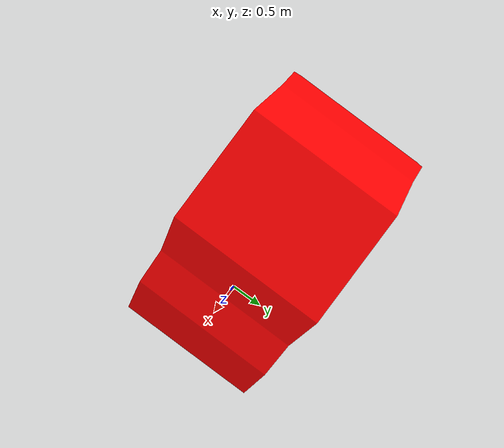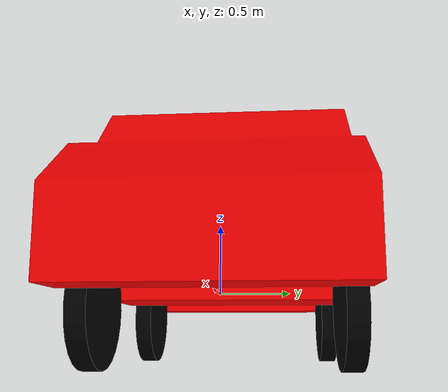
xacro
<?xml version="1.0"?>
<robot xmlns:xacro="http://www.ros.org/wiki/xacro" name="target_model" >
  <xacro:property name="wheelbase" value="2"/>
  <xacro:property name="gauge" value="2"/>
  <xacro:property name="wheel_r" value="0.45"/>
  <xacro:property name="wheel_h" value="0.15"/>
  <xacro:property name="real_wheelbase" value="1"/>
  <xacro:property name="real_gauge" value="1"/>
  <xacro:property name="real_wheel_r" value="0.4"/>
  <xacro:property name="real_wheel_h" value="0.05"/>
  <xacro:property name="body_mass" value="5"/>
  <xacro:property name="wheel_mass" value="0.2"/>

  <link name="base_link" />

  <joint name="zero_joint" type="fixed">
    <parent link="base_link"/>
    <child link="body_link"/>
     <origin xyz="0 0 0" rpy="0 0 0"/>
  </joint>
  <link name="body_link">
    <visual>
      <geometry>
        <!--mesh filename="file://$(find target_vehicle_description)/meshes/target_vehicle.dae"/-->
        <mesh filename="file://$(find target_vehicle_description)/meshes/follow_platform.dae"/>
      </geometry>
      <!--origin xyz="-1.1 0 -0.3" rpy="0 0 -1.57"/-->
      <material name="red">
	 <color rgba="1 0 0 1"/>
       </material>
    </visual>
    <collision>
      <geometry>
        <box size="4 1.1 1" />
      </geometry>
      <origin xyz="-1 0 0.7" rpy="0 0 0"/>
    </collision>
    <inertial>
      <mass value="${body_mass}"/>
      <inertia ixx="0.01" ixy="0.0" ixz="0.0" iyy="0.01" iyz="0.0" izz="0.01"/>
      <origin xyz="-0.4 0 -0.5" />
    </inertial>
  </link>

  <gazebo reference="body_link">
    <mu1>1</mu1>
    <mu2>1</mu2>
  </gazebo>

  <xacro:macro name="real_wheel" params="wh_name dx dy">
    <link name="${wh_name}_link">
      <collision>
        <geometry>
          <cylinder length="${real_wheel_h}" radius="${real_wheel_r}"/>
        </geometry>
        <origin rpy="${pi/2} 0 0" xyz="0 0 0"/>
      </collision>
      <inertial>
        <mass value="${wheel_mass}"/>
        <inertia izz="${0.25*wheel_mass*real_wheel_r*real_wheel_r + 1/12*wheel_mass*real_wheel_h*real_wheel_h}" ixy="0.0" ixz="0.0" ixx="${0.25*wheel_mass*real_wheel_r*real_wheel_r + 1/12*wheel_mass*real_wheel_h*real_wheel_h}" iyz="0.0" iyy="${0.5*wheel_mass*real_wheel_r*real_wheel_r}"/>
      </inertial>
    </link>
    <joint name="${wh_name}_j" type="continuous">
      <origin xyz="${dx} ${dy} ${-0.05-wheel_r+real_wheel_r}" rpy="0 0 0"/>
      <parent link="body_link"/>
      <axis xyz="0 1 0"/>
      <child link="${wh_name}_link"/>
      <dynamics damping="0.05"/>
    </joint>
    <gazebo reference="${wh_name}_link">
      <material>Gazebo/Black</material>
      <mu1>7</mu1>
      <mu2>5</mu2>
      <dampingFactor>0.05</dampingFactor>
      <kp>40000000</kp>
      <kd>20000000</kd>
    </gazebo>
    <transmission name="${wh_name}_j_transm">
      <type>transmission_interface/SimpleTransmission</type>
      <joint name="${wh_name}_j">
        <hardwareInterface>hardware_interface/VelocityJointInterface</hardwareInterface>
      </joint>
      <actuator name="${wh_name}_j_motor">
        <mechanicalReduction>1</mechanicalReduction>
        <hardwareInterface>hardware_interface/VelocityJointInterface</hardwareInterface>
      </actuator>
    </transmission>
  </xacro:macro>

  <xacro:macro name="fake_wheel" params="wh_name dx dy">
    <link name="${wh_name}_link">
      <visual>
        <geometry>
          <cylinder length="${wheel_h}" radius="${wheel_r}"/>
        </geometry>
        <origin rpy="${pi/2} 0 0" xyz="0 0 0"/>
        <material name="black">
	  <color rgba="0 0 0 1"/>
        </material>
      </visual>
    </link>
    <joint name="${wh_name}_j" type="fixed">
      <origin xyz="${dx} ${dy} -0.1" rpy="0 0 0"/>
      <parent link="body_link"/>
      <child link="${wh_name}_link"/>
      <dynamics damping="0.25"/>
    </joint>
    <gazebo reference="${wh_name}_link">
      <material>Gazebo/Black</material>
    </gazebo>
  </xacro:macro>

  <joint name="caster_joint" type="fixed">
    <parent link="body_link"/>
    <child link="caster_link"/>
     <origin xyz="0 0 0" rpy="0 0 0"/>
  </joint>
  <link name="caster_link">
    <collision>
      <geometry>
        <sphere radius="0.1"/>
      </geometry>
      <origin xyz="-1 0 -0.4" rpy="0 0 0"/>
    </collision>
    <inertial>
      <mass value="0.1"/>
      <inertia ixx="0.0001" ixy="0.0" ixz="0.0" iyy="0.0001" iyz="0.0" izz="0.0001"/>
      <!--origin xyz="-1.05 0 -0.5" /-->
    </inertial>
  </link>
    <gazebo reference="caster_link">
      <mu1>0.001</mu1>
      <mu2>0.01</mu2>
    </gazebo>
  <xacro:real_wheel wh_name="lwheel"  dx="0" dy="${real_gauge/2 + real_wheel_h/2 + 0.1}"  />
  <xacro:real_wheel wh_name="rwheel"  dx="0" dy="${-real_gauge/2 - real_wheel_h/2 - 0.1}"  />
  <xacro:fake_wheel wh_name="lwheelf"  dx="0" dy="${gauge/2 - wheel_h/2 }"  />
  <xacro:fake_wheel wh_name="rwheelf"  dx="0" dy="${-gauge/2 + wheel_h/2 }"  />
  <xacro:fake_wheel wh_name="lwheel2f"  dx="${-wheelbase}" dy="${gauge/2 - wheel_h/2 }" />
  <xacro:fake_wheel wh_name="rwheel2f"  dx="${-wheelbase}" dy="${-gauge/2 + wheel_h/2 }" />

  <gazebo>
    <plugin name="gazebo_ros_control" filename="libgazebo_ros_control.so">
        <robotSimType>gazebo_ros_control/DefaultRobotHWSim</robotSimType>
        <legacyModeNS>true</legacyModeNS>
        <!-- Control period is recommended to be the same as the world simulation period -->
        <controlPeriod>0.001</controlPeriod>
    </plugin>
    <plugin name="p3d_base_controller" filename="libgazebo_ros_p3d.so">
      <alwaysOn>true</alwaysOn>
      <updateRate>10.0</updateRate>
      <bodyName>base_link</bodyName>
      <topicName>target_ground_truth_odom</topicName>
      <gaussianNoise>0.01</gaussianNoise>
      <frameName>map</frameName>
      <xyzOffsets>0 0 0</xyzOffsets>
      <rpyOffsets>0 0 0</rpyOffsets>
    </plugin>
  </gazebo>

</robot>
